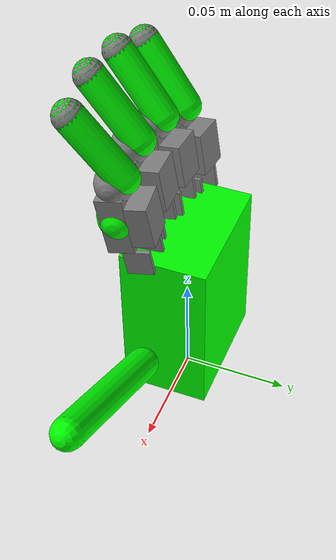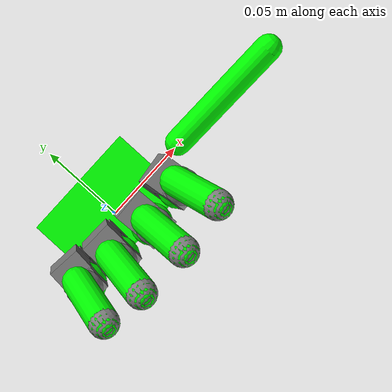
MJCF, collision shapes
<mujoco model="ability_hand">
  <compiler angle="radian" meshdir="assets/" />

  <default>
    <!-- disable all contacts and use explicit collision pairs -->
    <geom density="800" condim="1" contype="0" conaffinity="0" />
    <!-- with this setting, the response time is around 1s -->
    <position kp="100" dampratio="1.0" inheritrange="1" />
    <joint damping="0.0" armature="1.0" frictionloss="0.0" />
    <site size="0.01" type="sphere" rgba="1 0 0 1" group="3" />
    <default class="base">
      <position kp="300" dampratio="3.0" inheritrange="1" />
    </default>
  </default>

  <asset>
    <texture type="skybox" builtin="gradient" rgb1="1 1 1" rgb2="1 1 1" width="512"
      height="3072" />
    <texture type="2d" name="right_groundplane" builtin="checker" mark="edge" rgb1="1 1 1"
      rgb2="1 1 1"
      markrgb="1 1 1" width="300" height="300" />
    <material name="right_groundplane" texture="right_groundplane" texuniform="true"
      texrepeat="5 5"
      reflectance="0.2" />
    <mesh name="right_wristmesh" content_type="model/obj" file="wristmesh.obj" />
    <mesh name="right_wristmesh_C" content_type="model/obj" file="wristmesh_C.obj" />
    <mesh name="right_FB_palm_ref" content_type="model/obj" file="FB_palm_ref.obj" />
    <mesh name="right_thumb-F1" content_type="model/obj" file="thumb-F1.obj" />
    <mesh name="right_thumb-F1_C" content_type="model/obj" file="thumb-F1_C.obj" />
    <mesh name="right_thumb-F2" content_type="model/obj" file="thumb-F2.obj" />
    <mesh name="right_thumb-F2_C" content_type="model/obj" file="thumb-F2_C.obj" />
    <mesh name="right_idx-F1" content_type="model/obj" file="idx-F1.obj" />
    <mesh name="right_idx-F2" content_type="model/obj" file="idx-F2.obj" />
    <mesh name="right_idx-F2_C" content_type="model/obj" file="idx-F2_C.obj" />
  </asset>

  <worldbody>
    <light pos="0 0 3.5" dir="0 0 -1" directional="false" />
    <body name="L_forearm_ty_link">
      <camera name="right_track" pos="0.868 -0.348 -0.175"
        xyaxes="0.037 0.999 -0.000 0.011 -0.000 1.000" />
      <inertial pos="0 0 0" mass="0.1" diaginertia="0.01 0.01 0.01" />
      <joint name="L_forearm_tx_link_joint" pos="0 0 0" axis="1 0 0" type="slide" range="-5 5" />
      <body name="L_forearm_tz_link">
        <inertial pos="0 0 0" mass="0.1" diaginertia="0.01 0.01 0.01" />
        <joint name="L_forearm_ty_link_joint" pos="0 0 0" axis="0 1 0" type="slide" range="-5 5" />
        <body name="L_forearm_roll_link">
          <inertial pos="0 0 0" mass="0.1" diaginertia="0.01 0.01 0.01" />
          <joint name="L_forearm_tz_link_joint" pos="0 0 0" axis="0 0 1" type="slide" range="-5 5" />
          <body name="L_forearm_pitch_link">
            <inertial pos="0 0 0" mass="0.1" diaginertia="0.01 0.01 0.01" />
            <joint name="L_forearm_roll_link_joint" pos="0 0 0" axis="0 0 1" range="-6.2 6.2" />
            <body name="L_forearm_yaw_link">
              <inertial pos="0 0 0" mass="0.1" diaginertia="0.01 0.01 0.01" />
              <joint name="L_forearm_pitch_link_joint" pos="0 0 0" axis="1 0 0" range="-6.2 6.2"
              />
              <body name="right_base">
                <inertial pos="0.0192248 0.0101927 0.0246965"
                  quat="0.978669 -0.196697 -0.0581394 0.0116851" mass="0.6"
                  diaginertia="0.00200455 0.00200455 0.00178617" />
                <joint name="L_forearm_yaw_link_joint" pos="0 0 0" axis="0 -1 0" range="-6.2 6.2" />
                <geom name="right_wrist_mesh" type="mesh" contype="0" conaffinity="0" group="1"
                  density="0" mesh="right_wristmesh" />
                <geom name="collision_hand_right_palm_0" type="mesh" mesh="right_wristmesh_C"
                  group="3" />
                <geom name="right_palm_mesh" pos="0.0240477 0.00378125 0.0323296"
                  quat="0.0442297 0.00061027 0.999021 2.70192e-05" type="mesh" contype="0"
                  conaffinity="0" group="1" density="0" mesh="right_FB_palm_ref" />
                <geom name="collision_hand_right_palm_1" pos="0.0240477 0.00378125 0.0323296"
                  quat="0.0442297 0.00061027 0.999021 2.70192e-05" type="mesh"
                  mesh="right_FB_palm_ref" group="3" />
                <geom type="box" name="collision_hand_right_palm_2" size="0.03 0.02 0.04"
                  pos="0 0 0.05" contype="0" conaffinity="0" group="3"
                  density="0" rgba="0 1 0 1" />
                <site name="right_palm" pos="0 0 0" type="box"
                  size="0.01 0.02 0.03" quat="1 0 0 -1" />
                <body name="right_thumb_L1" pos="0.0240477 0.00378125 0.0323296"
                  quat="-0.00419696 0.994514 -0.0947972 0.0440301">
                  <inertial pos="0.014606 -0.00189085 -0.00311554"
                    quat="0.306728 0.531258 0.293089 0.733336" mass="0.00268342"
                    diaginertia="8.14795e-05 7.42718e-05 1.14409e-05" />
                  <joint name="right_thumb_q1" pos="0 0 0" axis="0 0 -1" range="-1.8 -0.6"
                  />
                  <geom name="right_thumb_mesh_1" pos="0.0278284 0 -0.0147507"
                    quat="-0.608761 0.793353 0 0" type="mesh" contype="0" conaffinity="0" group="1"
                    density="0" mesh="right_thumb-F1" />
                  <geom pos="0.0278284 0 -0.0147507" quat="-0.608761 0.793353 0 0" type="mesh"
                    mesh="right_thumb-F1_C" />
                  <body name="right_thumb_L2" pos="0.0278284 0 -0.0147507"
                    quat="-0.608761 0.793353 0 0">
                    <inertial pos="0.0300205 0.00559476 -0.00415044"
                      quat="0.00721249 0.656735 -0.223684 0.720148" mass="0.0055"
                      diaginertia="0.00180207 0.00170892 0.000287855" />
                    <joint name="right_thumb_q2" pos="0 0 0" axis="0 0 1" range="0 1.0"
                    />
                    <geom name="right_thumb_mesh_2" pos="0.0651867 0.0233402 -0.00393483"
                      quat="3.21978e-07 0.985259 0.171069 5.59046e-08" type="mesh" contype="0"
                      conaffinity="0" group="1" density="0" mesh="right_thumb-F2" />
                    <geom pos="0.0651867 0.0233402 -0.00393483"
                      quat="3.21978e-07 0.985259 0.171069 5.59046e-08" type="mesh"
                      mesh="right_thumb-F2_C" />
                    <geom name="collision_hand_right_thumb_0" type="capsule" size="0.007"
                      fromto="0 0 0 0.0651867 0.0233402 -0.00393483" contype="0" conaffinity="0"
                      group="3"
                      density="0" rgba="0 1 0 1" />
                    <site name="right_thumb_tip" pos="0.0651867 0.0233402 -0.00393483" />
                    <site name="track_hand_right_thumb_tip" pos="0.0651867 0.0233402 -0.00393483" />
                    <site name="trace_hand_right_thumb_tip" pos="0.0651867 0.0233402 -0.00393483" />
                  </body>
                </body>
                <body name="right_index_L1" pos="0.0279216 -0.00927034 0.0958706"
                  quat="-0.714459 -0.129917 0.685906 0.0469401">
                  <inertial pos="0.0224191 -0.000157982 -1.31987e-05"
                    quat="-0.00406251 0.706621 0.00934715 0.707518" mass="0.00635888"
                    diaginertia="0.000381765 0.000369601 2.96432e-05" />
                  <joint name="right_index_q1" pos="0 0 0" axis="0 0 -1" range="0 1.0"
                  />
                  <geom name="right_index_mesh_1" pos="0.0384727 0.0032577 0"
                    quat="0.999108 0 0 0.0422244" type="mesh" contype="0" conaffinity="0" group="1"
                    density="0" mesh="right_idx-F1" />
                  <geom size="0.0085" pos="0.036 -0.00175 0" />
                  <geom size="0.014 0.006 0.008" pos="0.019 -0.0045 0" quat="0.999108 0 0 0.0422374"
                    type="box" />
                  <geom size="0.01 0.005 0.008" pos="0.018 0.006 0" quat="0.999108 0 0 0.0422374"
                    type="box" />
                  <geom size="0.006 0.006 0.001" pos="-0.001 0 0.007" quat="0.999108 0 0 0.0422374"
                    type="box" />
                  <geom size="0.006 0.006 0.001" pos="-0.001 0 -0.007" quat="0.999108 0 0 0.0422374"
                    type="box" />
                  <geom name="collision_hand_right_index_1" type="sphere" size="0.01"
                    pos="0.019 -0.0045 0" contype="0" conaffinity="0" group="3"
                    density="0" rgba="0 1 0 1" />
                  <body name="right_index_L2" pos="0.0384727 0.0032577 0"
                    quat="0.999108 0 0 0.0422244">
                    <inertial pos="0.0133682 -0.00875392 -2.886e-05"
                      quat="-0.161363 0.673074 0.216775 0.688434" mass="0.00645"
                      diaginertia="0.000264645 0.000263553 1.71391e-05" />
                    <joint name="right_index_q2" pos="0 0 0" axis="0 0 -1" range="0 1.0"
                    />
                    <geom name="right_index_mesh_2" pos="0.0091241 0 0" quat="1 0 0 0" type="mesh"
                      contype="0" conaffinity="0" group="1" density="0" mesh="right_idx-F2" />
                    <geom type="mesh" mesh="right_idx-F2_C" />
                    <geom size="0.007" pos="0.03 -0.016 0" />
                    <geom name="collision_hand_right_index_0" type="capsule" size="0.007"
                      fromto="0 0 0 0.03 -0.016 0" contype="0" conaffinity="0" group="3"
                      density="0" rgba="0 1 0 1" />
                    <site name="right_index_tip" pos="0.03 -0.016 0" />
                    <site name="track_hand_right_index_tip" pos="0.03 -0.016 0" />
                    <site name="trace_hand_right_index_tip" pos="0.03 -0.016 0" />
                  </body>
                </body>
                <body name="right_middle_L1" pos="0.00841718 -0.0115172 0.0990634"
                  quat="-0.698395 -0.103508 0.704562 0.0715738">
                  <inertial pos="0.0224191 -0.000157982 -1.31987e-05"
                    quat="-0.00406251 0.706621 0.00934715 0.707518" mass="0.00635888"
                    diaginertia="0.000381765 0.000369601 2.96432e-05" />
                  <joint name="right_middle_q1" pos="0 0 0" axis="0 0 -1" range="0 1.0"
                  />
                  <geom name="right_middle_mesh_1" pos="0.0384727 0.0032577 0"
                    quat="0.999108 0 0 0.0422244" type="mesh" contype="0" conaffinity="0" group="1"
                    density="0" mesh="right_idx-F1" />
                  <geom size="0.0085" pos="0.036 -0.00175 0" />
                  <geom size="0.014 0.006 0.008" pos="0.019 -0.0045 0" quat="0.999108 0 0 0.0422374"
                    type="box" />
                  <geom size="0.01 0.005 0.008" pos="0.018 0.006 0" quat="0.999108 0 0 0.0422374"
                    type="box" />
                  <geom size="0.006 0.006 0.001" pos="-0.001 0 0.007" quat="0.999108 0 0 0.0422374"
                    type="box" />
                  <geom size="0.006 0.006 0.001" pos="-0.001 0 -0.007" quat="0.999108 0 0 0.0422374"
                    type="box" />
                  <geom name="collision_hand_right_middle_1" type="sphere" size="0.01"
                    pos="0.019 -0.0045 0" contype="0" conaffinity="0" group="3"
                    density="0" rgba="0 1 0 1" />
                  <body name="right_middle_L2" pos="0.0384727 0.0032577 0"
                    quat="0.999108 0 0 0.0422244">
                    <inertial pos="0.0133682 -0.00875392 -2.886e-05"
                      quat="-0.161363 0.673074 0.216775 0.688434" mass="0.00645"
                      diaginertia="0.000264645 0.000263553 1.71391e-05" />
                    <joint name="right_middle_q2" pos="0 0 0" axis="0 0 -1" range="0 1.0"
                    />
                    <geom name="right_middle_mesh_2" pos="0.0091241 0 0" quat="1 0 0 0" type="mesh"
                      contype="0" conaffinity="0" group="1" density="0" mesh="right_idx-F2" />
                    <geom type="mesh" mesh="right_idx-F2_C" />
                    <geom size="0.007" pos="0.03 -0.016 0" />
                    <geom name="collision_hand_right_middle_0" type="capsule" size="0.007"
                      fromto="0 0 0 0.03 -0.016 0" contype="0" conaffinity="0" group="3"
                      density="0" rgba="0 1 0 1" />
                    <site name="right_middle_tip" pos="0.03 -0.016 0" />
                    <site name="track_hand_right_middle_tip" pos="0.03 -0.016 0" />
                    <site name="trace_hand_right_middle_tip" pos="0.03 -0.016 0" />
                  </body>
                </body>
                <body name="right_ring_L1" pos="-0.0117529 -0.0103946 0.0967038"
                  quat="-0.681173 -0.0769649 0.721351 0.0986547">
                  <inertial pos="0.0224191 -0.000157982 -1.31987e-05"
                    quat="-0.00406251 0.706621 0.00934715 0.707518" mass="0.00635888"
                    diaginertia="0.000381765 0.000369601 2.96432e-05" />
                  <joint name="right_ring_q1" pos="0 0 0" axis="0 0 -1" range="0 1.0" />
                  <geom name="right_ring_mesh_1" pos="0.0384727 0.0032577 0"
                    quat="0.999108 0 0 0.0422244"
                    type="mesh" contype="0" conaffinity="0" group="1" density="0"
                    mesh="right_idx-F1" />
                  <geom size="0.0085" pos="0.036 -0.00175 0" />
                  <geom size="0.014 0.006 0.008" pos="0.019 -0.0045 0" quat="0.999108 0 0 0.0422374"
                    type="box" />
                  <geom size="0.01 0.005 0.008" pos="0.018 0.006 0" quat="0.999108 0 0 0.0422374"
                    type="box" />
                  <geom size="0.006 0.006 0.001" pos="-0.001 0 0.007" quat="0.999108 0 0 0.0422374"
                    type="box" />
                  <geom size="0.006 0.006 0.001" pos="-0.001 0 -0.007" quat="0.999108 0 0 0.0422374"
                    type="box" />
                  <geom name="collision_hand_right_ring_1" type="sphere" size="0.01"
                    pos="0.019 -0.0045 0" contype="0" conaffinity="0" group="3"
                    density="0" rgba="0 1 0 1" />
                  <body name="right_ring_L2" pos="0.0384727 0.0032577 0"
                    quat="0.999108 0 0 0.0422244">
                    <inertial pos="0.0133682 -0.00875392 -2.886e-05"
                      quat="-0.161363 0.673074 0.216775 0.688434" mass="0.00645"
                      diaginertia="0.000264645 0.000263553 1.71391e-05" />
                    <joint name="right_ring_q2" pos="0 0 0" axis="0 0 -1" range="0 1.0"
                    />
                    <geom name="right_ring_mesh_2" pos="0.0091241 0 0" quat="1 0 0 0" type="mesh"
                      contype="0" conaffinity="0" group="1" density="0" mesh="right_idx-F2" />
                    <geom type="mesh" mesh="right_idx-F2_C" />
                    <geom size="0.007" pos="0.03 -0.016 0" />
                    <geom name="collision_hand_right_ring_0" type="capsule" size="0.007"
                      fromto="0 0 0 0.03 -0.016 0" contype="0" conaffinity="0" group="3"
                      density="0" rgba="0 1 0 1" />
                    <site name="right_ring_tip" pos="0.03 -0.016 0" />
                    <site name="track_hand_right_ring_tip" pos="0.03 -0.016 0" />
                    <site name="trace_hand_right_ring_tip" pos="0.03 -0.016 0" />
                  </body>
                </body>
                <body name="right_pinky_L1" pos="-0.0308633 -0.00716283 0.0907346"
                  quat="-0.681748 -0.0544096 0.719226 0.122363">
                  <inertial pos="0.0224191 -0.000157982 -1.31987e-05"
                    quat="-0.00406251 0.706621 0.00934715 0.707518" mass="0.00635888"
                    diaginertia="0.000381765 0.000369601 2.96432e-05" />
                  <joint name="right_pinky_q1" pos="0 0 0" axis="0 0 -1" range="0 1.0"
                  />
                  <geom name="right_pinky_mesh_1" pos="0.0384727 0.0032577 0"
                    quat="0.999108 0 0 0.0422244" type="mesh" contype="0" conaffinity="0" group="1"
                    density="0" mesh="right_idx-F1" />
                  <geom size="0.0085" pos="0.036 -0.00175 0" />
                  <geom size="0.014 0.006 0.008" pos="0.019 -0.0045 0" quat="0.999108 0 0 0.0422374"
                    type="box" />
                  <geom size="0.01 0.005 0.008" pos="0.018 0.006 0" quat="0.999108 0 0 0.0422374"
                    type="box" />
                  <geom size="0.006 0.006 0.001" pos="-0.001 0 0.007" quat="0.999108 0 0 0.0422374"
                    type="box" />
                  <geom size="0.006 0.006 0.001" pos="-0.001 0 -0.007" quat="0.999108 0 0 0.0422374"
                    type="box" />
                  <geom name="collision_hand_right_pinky_1" type="sphere" size="0.01"
                    pos="0.019 -0.0045 0" contype="0" conaffinity="0" group="3"
                    density="0" rgba="0 1 0 1" />
                  <body name="right_pinky_L2" pos="0.0384727 0.0032577 0"
                    quat="0.999108 0 0 0.0422244">
                    <inertial pos="0.0133682 -0.00875392 -2.886e-05"
                      quat="-0.161363 0.673074 0.216775 0.688434" mass="0.00645"
                      diaginertia="0.000264645 0.000263553 1.71391e-05" />
                    <joint name="right_pinky_q2" pos="0 0 0" axis="0 0 -1" range="0 1.0"
                    />
                    <geom name="right_pinky_mesh_2" pos="0.0091241 0 0" quat="1 0 0 0" type="mesh"
                      contype="0" conaffinity="0" group="1" density="0" mesh="right_idx-F2" />
                    <geom type="mesh" mesh="right_idx-F2_C" />
                    <geom size="0.007" pos="0.03 -0.016 0" />
                    <geom name="collision_hand_right_pinky_0" type="capsule" size="0.007"
                      fromto="0 0 0 0.03 -0.016 0" contype="0" conaffinity="0" group="3"
                      density="0" rgba="0 1 0 1" />
                    <site name="right_pinky_tip" pos="0.03 -0.016 0" />
                    <site name="track_hand_right_pinky_tip" pos="0.03 -0.016 0" />
                    <site name="trace_hand_right_pinky_tip" pos="0.03 -0.016 0" />
                  </body>
                </body>
              </body>
            </body>
          </body>
        </body>
      </body>
    </body>
  </worldbody>
  <actuator>
    <!-- Global position and rotation joints -->
    <position class="base" name="L_forearm_tx_position" joint="L_forearm_tx_link_joint" />
    <position class="base" name="L_forearm_ty_position" joint="L_forearm_ty_link_joint" />
    <position class="base" name="L_forearm_tz_position" joint="L_forearm_tz_link_joint" />
    <position class="base" name="L_forearm_roll_position" joint="L_forearm_roll_link_joint" />
    <position class="base" name="L_forearm_pitch_position" joint="L_forearm_pitch_link_joint" />
    <position class="base" name="L_forearm_yaw_position" joint="L_forearm_yaw_link_joint" />

    <!-- Thumb joints -->
    <position name="right_thumb_q1_position" joint="right_thumb_q1" />
    <position name="right_thumb_q2_position" joint="right_thumb_q2" />

    <!-- Index joints -->
    <position name="right_index_q1_position" joint="right_index_q1" />
    <position name="right_index_q2_position" joint="right_index_q2" />

    <!-- Middle joints -->
    <position name="right_middle_q1_position" joint="right_middle_q1" />
    <position name="right_middle_q2_position" joint="right_middle_q2" />

    <!-- Ring joints -->
    <position name="right_ring_q1_position" joint="right_ring_q1" />
    <position name="right_ring_q2_position" joint="right_ring_q2" />

    <!-- Pinky joints -->
    <position name="right_pinky_q1_position" joint="right_pinky_q1" />
    <position name="right_pinky_q2_position" joint="right_pinky_q2" />

  </actuator>
</mujoco>
